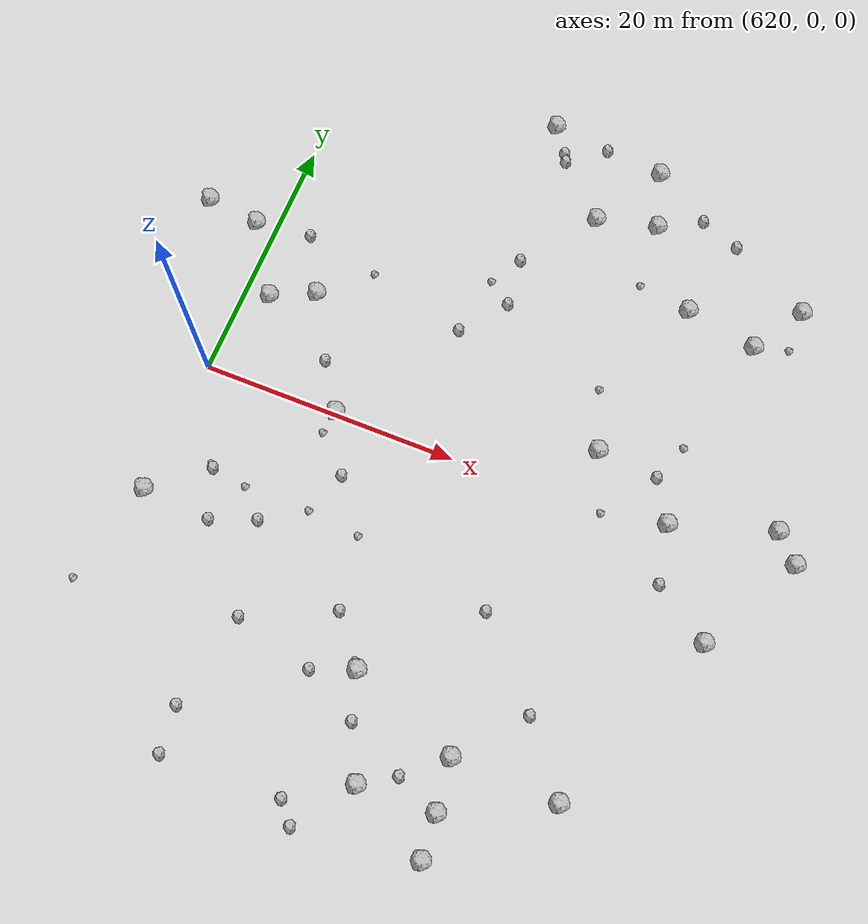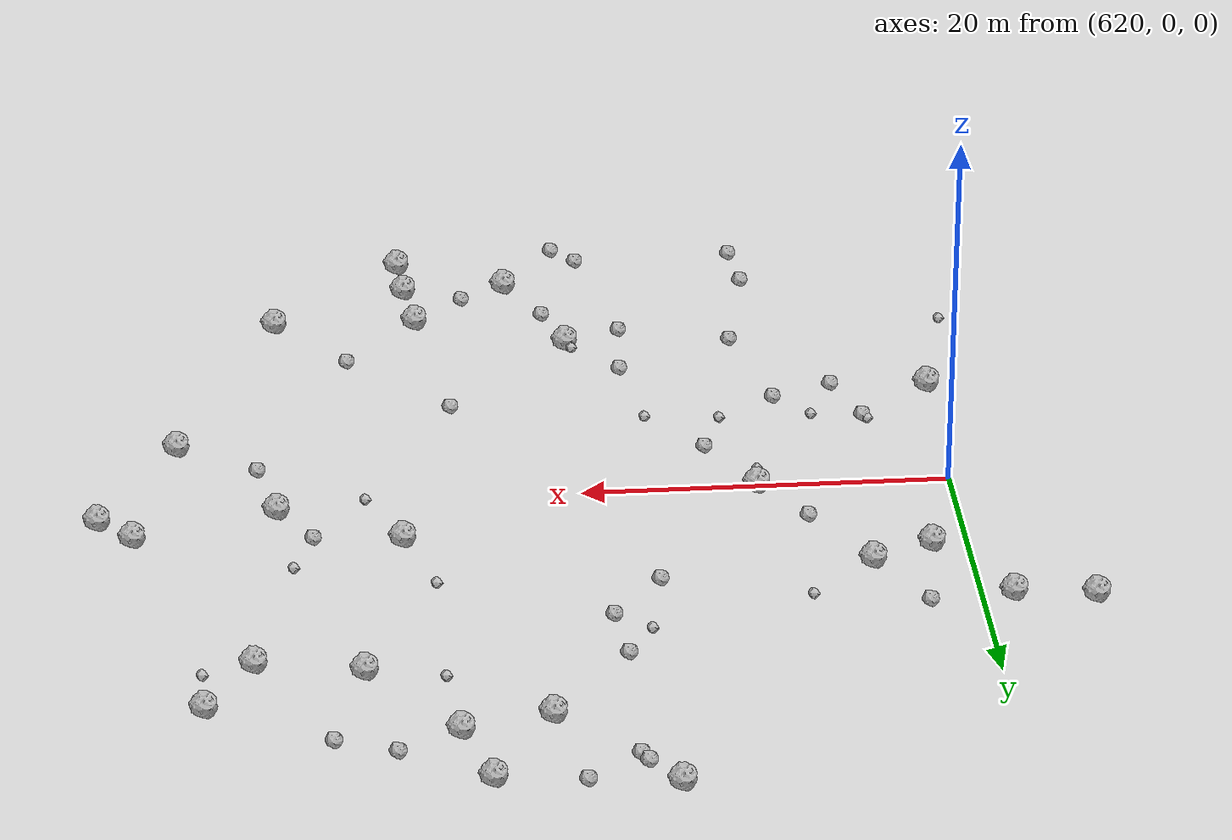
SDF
<sdf version="1.6">
 <world name="default">
  <include><uri>model://sun</uri></include>
  <model name="rock1_16_3">
   <include><uri>model://rock1</uri><pose>664.2245761098217 3.5483010466809546 0.5 0 0 0</pose></include>
  </model>
  <model name="rock1_16_4">
   <include><uri>model://rock1</uri><pose>649.8942291262284 4.583886696569884 0.5 0 0 0</pose></include>
  </model>
  <model name="rock1_16_5">
   <include><uri>model://rock1</uri><pose>614.0829291700286 13.131331009978354 0.5 0 0 0</pose></include>
  </model>
  <model name="rock1_16_6">
   <include><uri>model://rock1</uri><pose>647.870399147854 23.959641806590426 0.5 0 0 0</pose></include>
  </model>
  <model name="rock1_16_7">
   <include><uri>model://rock1</uri><pose>625.2497247133236 8.696317911054948 0.5 0 0 0</pose></include>
  </model>
  <model name="rock1_16_8">
   <include><uri>model://rock1</uri><pose>666.0979113696101 1.5779899160682085 0.5 0 0 0</pose></include>
  </model>
  <model name="rock1_16_9">
   <include><uri>model://rock1</uri><pose>652.4487441840453 17.95414225483222 0.5 0 0 0</pose></include>
  </model>
  <model name="rock1_16_10">
   <include><uri>model://rock1</uri><pose>621.9305946601596 7.156118562760589 0.5 0 0 0</pose></include>
  </model>
  <model name="rock1_16_11">
   <include><uri>model://rock1</uri><pose>660.6501577274682 21.014436715627383 0.5 0 0 0</pose></include>
  </model>
  <model name="rock1_16_12">
   <include><uri>model://rock1</uri><pose>646.5286629897785 28.53266542488288 0.5 0 0 0</pose></include>
  </model>
  <model name="rock1_16_13">
   <include><uri>model://rock1</uri><pose>643.1651185785312 22.822734649896667 0.5 0 0 0</pose></include>
  </model>
  <model name="rock1_16_14">
   <include><uri>model://rock1</uri><pose>630.5338996220647 0.17390134246559086 0.5 0 0 0</pose></include>
  </model>
  <model name="rock1_16_15">
   <include><uri>model://rock1</uri><pose>642.7477111592931 -24.50666009762802 0.5 0 0 0</pose></include>
  </model>
  <model name="rock1_16_16">
   <include><uri>model://rock1</uri><pose>656.5158332171167 1.075954633601043 0.5 0 0 0</pose></include>
  </model>
  <model name="rock1_16_17">
   <include><uri>model://rock1</uri><pose>648.561726849755 -24.238842265540967 0.5 0 0 0</pose></include>
  </model>
  <model name="rock1_16_18">
   <include><uri>model://rock1</uri><pose>656.1137274650741 -20.533507079706727 0.5 0 0 0</pose></include>
  </model>
  <model name="rock1_16_19">
   <include><uri>model://rock1</uri><pose>637.2969723633411 29.59187893303617 0.5 0 0 0</pose></include>
  </model>
  <model name="rock1_16_20">
   <include><uri>model://rock1</uri><pose>648.7961284528325 -27.50990794023164 0.5 0 0 0</pose></include>
  </model>
  <model name="rock1_16_21">
   <include><uri>model://rock1</uri><pose>658.0667926300694 16.86565096953428 0.5 0 0 0</pose></include>
  </model>
  <model name="rock1_16_22">
   <include><uri>model://rock1</uri><pose>661.8014414334275 -6.3176875991285115 0.5 0 0 0</pose></include>
  </model>
  <model name="rock1_16_23">
   <include><uri>model://rock1</uri><pose>618.3504413273316 12.604078796903437 0.5 0 0 0</pose></include>
  </model>
  <model name="rock1_16_24">
   <include><uri>model://rock1</uri><pose>648.0875773358471 -20.38586637354102 0.5 0 0 0</pose></include>
  </model>
  <model name="rock1_16_25">
   <include><uri>model://rock1</uri><pose>639.6907567676681 -17.193012743881216 0.5 0 0 0</pose></include>
  </model>
  <model name="rock1_16_26">
   <include><uri>model://rock1</uri><pose>619.8351698245938 -10.646580119941518 0.5 0 0 0</pose></include>
  </model>
  <model name="rock2_16_0">
   <include><uri>model://rock2</uri><pose>638.340875208034 -27.282707476170632 0.3 0 0 0</pose></include>
  </model>
  <model name="rock2_16_1">
   <include><uri>model://rock2</uri><pose>657.4237435916159 -3.4072764003243137 0.3 0 0 0</pose></include>
  </model>
  <model name="rock2_16_2">
   <include><uri>model://rock2</uri><pose>636.5070918384871 -18.419467961912783 0.3 0 0 0</pose></include>
  </model>
  <model name="rock2_16_3">
   <include><uri>model://rock2</uri><pose>639.6547515333426 -28.76786327878294 0.3 0 0 0</pose></include>
  </model>
  <model name="rock2_16_4">
   <include><uri>model://rock2</uri><pose>625.1953001740144 -11.013780116947974 0.3 0 0 0</pose></include>
  </model>
  <model name="rock2_16_5">
   <include><uri>model://rock2</uri><pose>651.0778011643301 25.790292483692753 0.3 0 0 0</pose></include>
  </model>
  <model name="rock2_16_6">
   <include><uri>model://rock2</uri><pose>639.3091331050111 13.338254961283951 0.3 0 0 0</pose></include>
  </model>
  <model name="rock2_16_7">
   <include><uri>model://rock2</uri><pose>629.2743620462821 -27.657426787890465 0.3 0 0 0</pose></include>
  </model>
  <model name="rock2_16_8">
   <include><uri>model://rock2</uri><pose>628.5785307276022 -9.725051036116941 0.3 0 0 0</pose></include>
  </model>
  <model name="rock2_16_9">
   <include><uri>model://rock2</uri><pose>638.8669352699262 17.215351385066583 0.3 0 0 0</pose></include>
  </model>
  <model name="rock2_16_10">
   <include><uri>model://rock2</uri><pose>641.8837475403843 29.04059416664601 0.3 0 0 0</pose></include>
  </model>
  <model name="rock2_16_11">
   <include><uri>model://rock2</uri><pose>654.217861367155 24.56487688084352 0.3 0 0 0</pose></include>
  </model>
  <model name="rock2_16_12">
   <include><uri>model://rock2</uri><pose>623.8508867039578 -7.291151822560245 0.3 0 0 0</pose></include>
  </model>
  <model name="rock2_16_13">
   <include><uri>model://rock2</uri><pose>632.9365532428205 -4.2973503756184925 0.3 0 0 0</pose></include>
  </model>
  <model name="rock2_16_14">
   <include><uri>model://rock2</uri><pose>622.7690829836463 13.092755439198399 0.3 0 0 0</pose></include>
  </model>
  <model name="rock2_16_15">
   <include><uri>model://rock2</uri><pose>654.6192797772812 4.204694064967612 0.3 0 0 0</pose></include>
  </model>
  <model name="rock2_16_16">
   <include><uri>model://rock2</uri><pose>628.9164460313876 -24.164326460949965 0.3 0 0 0</pose></include>
  </model>
  <model name="rock2_16_17">
   <include><uri>model://rock2</uri><pose>639.0831854936197 26.834206897896102 0.3 0 0 0</pose></include>
  </model>
  <model name="rock2_16_18">
   <include><uri>model://rock2</uri><pose>646.5761049376509 -9.905420223331621 0.3 0 0 0</pose></include>
  </model>
  <model name="rock2_16_19">
   <include><uri>model://rock2</uri><pose>645.2459472977367 -22.916181801640363 0.3 0 0 0</pose></include>
  </model>
  <model name="rock2_16_20">
   <include><uri>model://rock2</uri><pose>638.7461391499896 27.528527367223226 0.3 0 0 0</pose></include>
  </model>
  <model name="rock2_16_21">
   <include><uri>model://rock2</uri><pose>636.6008570735629 9.881796997718162 0.3 0 0 0</pose></include>
  </model>
  <model name="rock2_16_22">
   <include><uri>model://rock2</uri><pose>652.1143029371387 -15.686797143135385 0.3 0 0 0</pose></include>
  </model>
  <model name="rock2_16_23">
   <include><uri>model://rock2</uri><pose>628.1004673173868 3.7412210313321097 0.3 0 0 0</pose></include>
  </model>
  <model name="rock2_16_24">
   <include><uri>model://rock2</uri><pose>640.7519744640354 -20.6697920364973 0.3 0 0 0</pose></include>
  </model>
  <model name="rock2_16_25">
   <include><uri>model://rock2</uri><pose>630.3047735093044 -16.83150212734642 0.3 0 0 0</pose></include>
  </model>
  <model name="rock2_16_26">
   <include><uri>model://rock2</uri><pose>636.8308383668627 -13.745384584600192 0.3 0 0 0</pose></include>
  </model>
  <model name="rock3_16_0">
   <include><uri>model://rock3</uri><pose>648.2679797636699 18.62578122425623 0.2 0 0 0</pose></include>
  </model>
  <model name="rock3_16_1">
   <include><uri>model://rock3</uri><pose>630.2522728942361 -1.714512775601932 0.2 0 0 0</pose></include>
  </model>
  <model name="rock3_16_2">
   <include><uri>model://rock3</uri><pose>628.7155529636178 11.857914127171192 0.2 0 0 0</pose></include>
  </model>
  <model name="rock3_16_3">
   <include><uri>model://rock3</uri><pose>639.2863988101649 -16.651180474756536 0.2 0 0 0</pose></include>
  </model>
  <model name="rock3_16_4">
   <include><uri>model://rock3</uri><pose>651.6606133907704 0.06548586946260926 0.2 0 0 0</pose></include>
  </model>
  <model name="rock3_16_5">
   <include><uri>model://rock3</uri><pose>631.745110479634 -7.721036986985624 0.2 0 0 0</pose></include>
  </model>
  <model name="rock3_16_6">
   <include><uri>model://rock3</uri><pose>637.4094491934445 14.67889418596478 0.2 0 0 0</pose></include>
  </model>
  <model name="rock3_16_7">
   <include><uri>model://rock3</uri><pose>655.7049213389017 7.1217799532996295 0.2 0 0 0</pose></include>
  </model>
  <model name="rock3_16_8">
   <include><uri>model://rock3</uri><pose>648.2781184216666 9.230388090948601 0.2 0 0 0</pose></include>
  </model>
  <model name="rock3_16_9">
   <include><uri>model://rock3</uri><pose>660.6425084681658 17.62036660893468 0.2 0 0 0</pose></include>
  </model>
  <model name="rock3_16_10">
   <include><uri>model://rock3</uri><pose>635.859448646119 -8.157956103391115 0.2 0 0 0</pose></include>
  </model>
  <model name="rock3_16_11">
   <include><uri>model://rock3</uri><pose>626.6314886655525 -7.745429411599957 0.2 0 0 0</pose></include>
  </model>
  <model name="rock3_16_12">
   <include><uri>model://rock3</uri><pose>617.9828412888396 -18.661033307435133 0.2 0 0 0</pose></include>
  </model>
  <model name="rock3_16_13">
   <include><uri>model://rock3</uri><pose>623.5658935268467 -7.032056371505973 0.2 0 0 0</pose></include>
  </model>
 </world>
</sdf>
